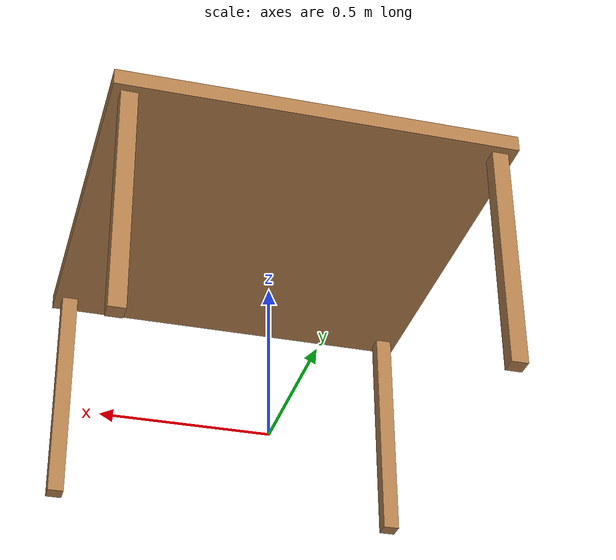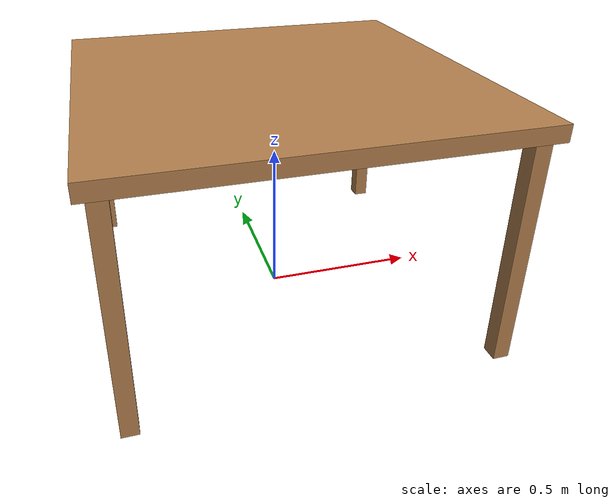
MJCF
<mujoco>
    <default>
        <default class="viz_Table" >
            <geom  contype="0" conaffinity="0" type="mesh"/>
        </default>
        <default class="body_Table" >
            <geom contype="1" conaffinity="1" group="3" solref="0.001 1"/>
        </default>
    </default>
    <asset>
        <texture name="wood" type="cube" height="1" width="1" file="../../assets/textures/wood2.png" />
        <material name="wood" texture="wood"/>
    </asset>
   <worldbody>
        <body name="table_vis" pos="0 0 0" childclass="viz_Table">
            <geom type="box" material="wood" size=".6 .6 .025" pos="0 0 0.735" mass="40"/>
            <geom type="box" material="wood" size="0.025 0.025 0.355" pos="-0.55 0.55 0.355"/>
            <geom type="box" material="wood" size="0.025 0.025 0.355" pos="-0.55 -0.55 0.355"/>
            <geom type="box" material="wood" size="0.025 0.025 0.355" pos="0.55 0.55 0.355"/>
            <geom type="box" material="wood" size="0.025 0.025 0.355" pos="0.55 -0.55 0.355"/>
        </body>
        <body name="table_body" pos="0 0 0"  childclass="body_Table" >
            <geom type="box" size=".6 .6 .025" pos="0 0 0.735" mass="40" />
            <geom type="box" size="0.025 0.025 0.355" pos="-0.55 0.55 0.355"/>
            <geom type="box" size="0.025 0.025 0.355" pos="-0.55 -0.55 0.355"/>
            <geom type="box" size="0.025 0.025 0.355" pos="0.55 0.55 0.355"/>
            <geom type="box" size="0.025 0.025 0.355" pos="0.55 -0.55 0.355"/>
        </body>
    </worldbody>
</mujoco>
